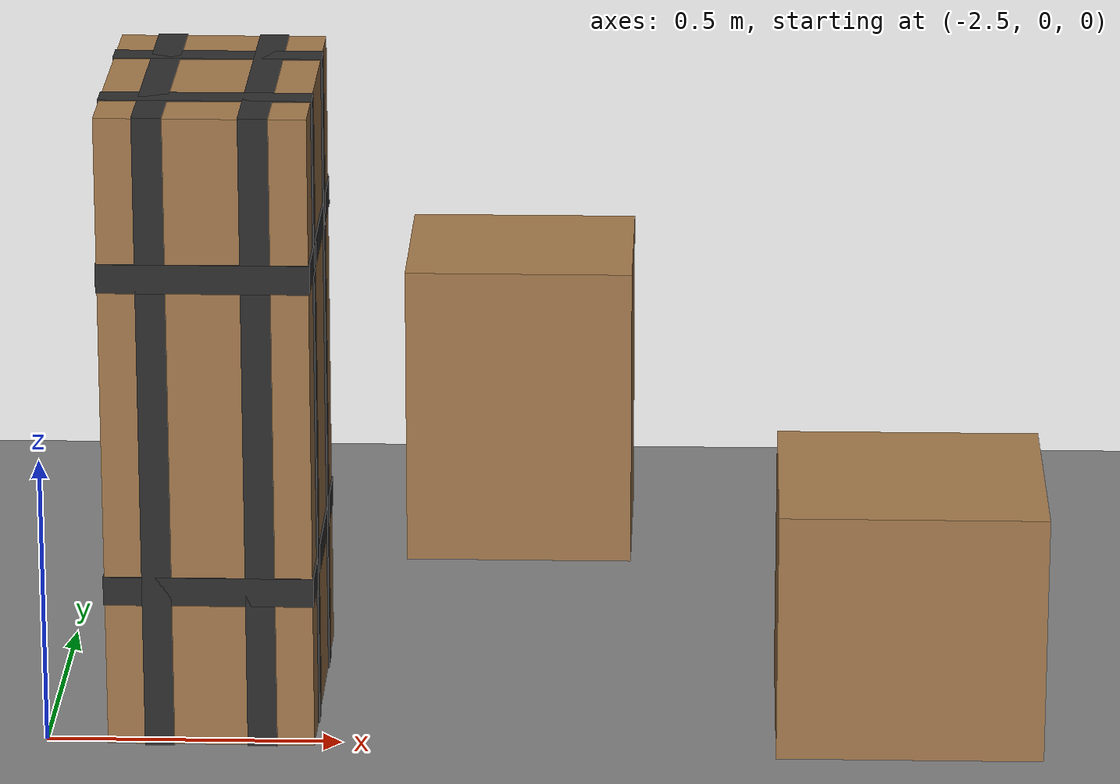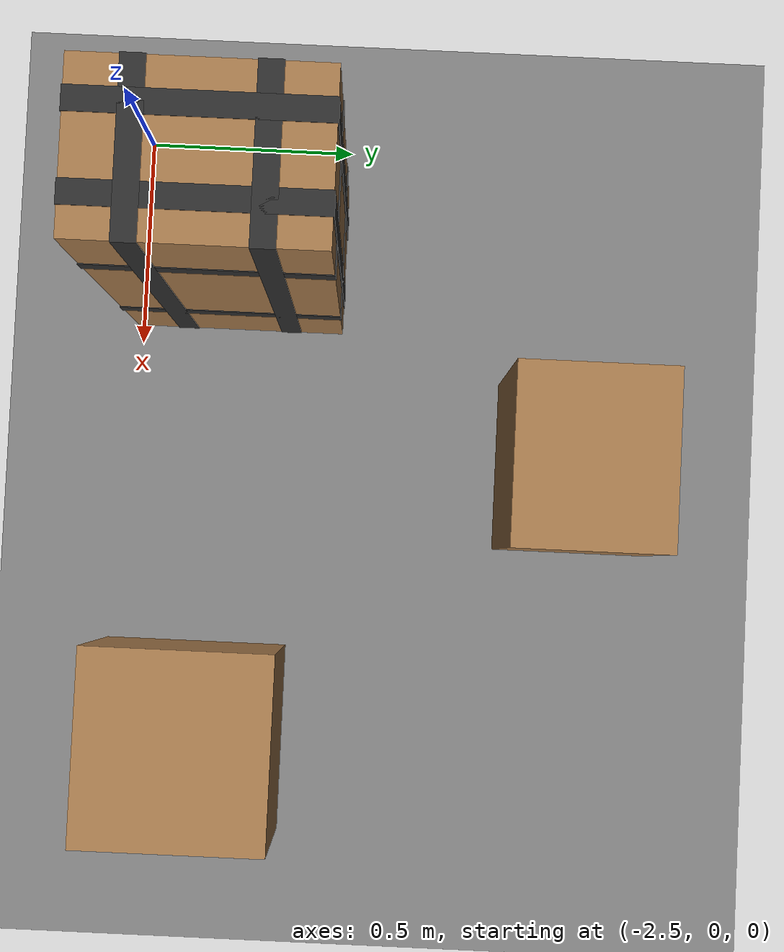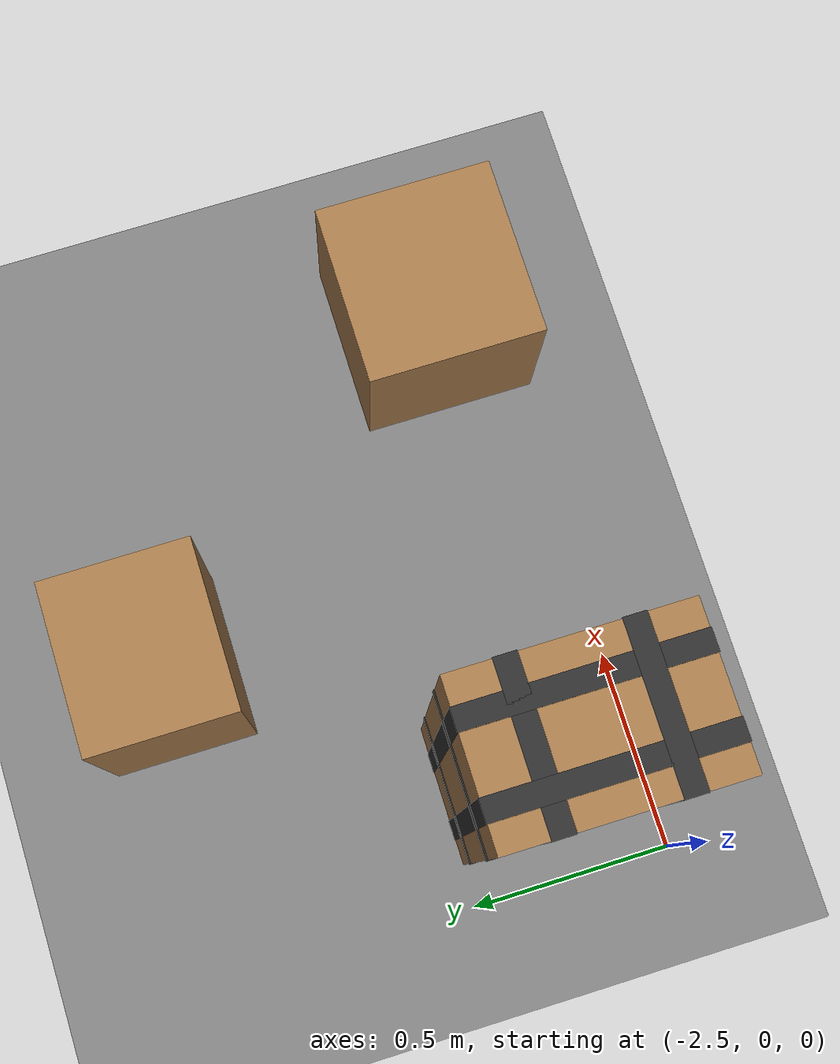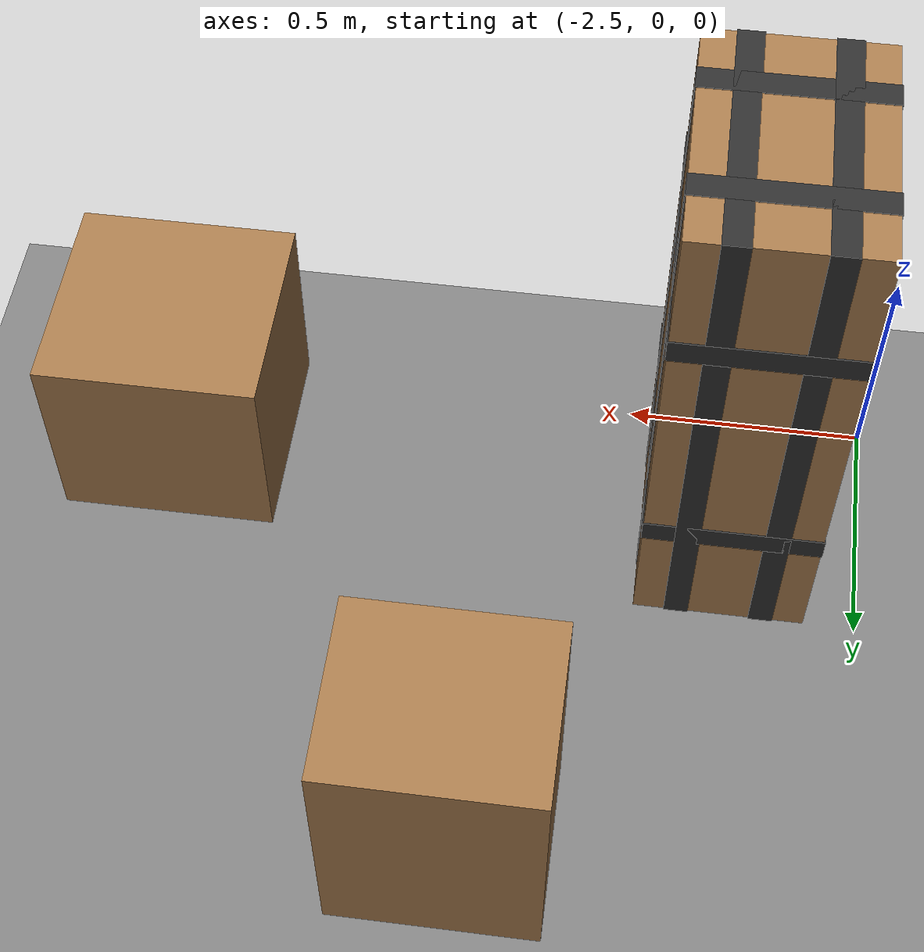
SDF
<sdf version="1.9">
 <world name="ecps295_lowbox_s0">
  <model name="ground_plane">
   <static>true</static>
   <link name="link">
    <collision name="collision">
     <geometry><plane><normal>0 0 1</normal><size>50 50</size></plane></geometry>
    </collision>
    <visual name="visual">
     <geometry><plane><normal>0 0 1</normal><size>50 50</size></plane></geometry>
     <material><ambient>0.5 0.5 0.5 1</ambient><diffuse>0.5 0.5 0.5 1</diffuse></material>
    </visual>
   </link>
  </model>
  <model name="lb1">
   <static>true</static>
   <pose>-1.04 0.17 0.214 0 0 0</pose>
   <link name="link">
    <collision name="c"><geometry><box><size>0.45 0.44 0.43</size></box></geometry></collision>
    <visual name="v">
     <geometry><box><size>0.45 0.44 0.43</size></box></geometry>
     <material><ambient>0.65 0.48 0.30 1</ambient><diffuse>0.65 0.48 0.30 1</diffuse></material>
    </visual>
   </link>
  </model>
  <model name="lb2">
   <static>true</static>
   <pose>-2.22 0.24 0.55 0 0 0</pose>
   <link name="link">
    <collision name="c"><geometry><box><size>0.35 0.51 1.1</size></box></geometry></collision>
    <visual name="v">
     <geometry><box><size>0.35 0.51 1.1</size></box></geometry>
     <material><ambient>0.65 0.48 0.30 1</ambient><diffuse>0.65 0.48 0.30 1</diffuse></material>
    </visual>
    <visual name="tape_ring0">
     <pose>0.000 0.000 -0.275 0 0 0</pose>
     <geometry><box><size>0.354 0.514 0.050</size></box></geometry>
     <material><ambient>0.18 0.18 0.18 1</ambient><diffuse>0.18 0.18 0.18 1</diffuse></material>
    </visual>
    <visual name="tape_bx0">
     <pose>-0.087 0.000 0.000 0 0 0</pose>
     <geometry><box><size>0.050 0.514 1.104</size></box></geometry>
     <material><ambient>0.18 0.18 0.18 1</ambient><diffuse>0.18 0.18 0.18 1</diffuse></material>
    </visual>
    <visual name="tape_by0">
     <pose>0.000 -0.128 0.000 0 0 0</pose>
     <geometry><box><size>0.354 0.050 1.104</size></box></geometry>
     <material><ambient>0.18 0.18 0.18 1</ambient><diffuse>0.18 0.18 0.18 1</diffuse></material>
    </visual>
    <visual name="tape_ring1">
     <pose>0.000 0.000 0.275 0 0 0</pose>
     <geometry><box><size>0.354 0.514 0.050</size></box></geometry>
     <material><ambient>0.18 0.18 0.18 1</ambient><diffuse>0.18 0.18 0.18 1</diffuse></material>
    </visual>
    <visual name="tape_bx1">
     <pose>0.087 0.000 0.000 0 0 0</pose>
     <geometry><box><size>0.050 0.514 1.104</size></box></geometry>
     <material><ambient>0.18 0.18 0.18 1</ambient><diffuse>0.18 0.18 0.18 1</diffuse></material>
    </visual>
    <visual name="tape_by1">
     <pose>0.000 0.128 0.000 0 0 0</pose>
     <geometry><box><size>0.354 0.050 1.104</size></box></geometry>
     <material><ambient>0.18 0.18 0.18 1</ambient><diffuse>0.18 0.18 0.18 1</diffuse></material>
    </visual>
   </link>
  </model>
  <model name="lb5">
   <static>true</static>
   <pose>-1.73 1.07 0.274 0 0 0</pose>
   <link name="link">
    <collision name="c"><geometry><box><size>0.41 0.36 0.55</size></box></geometry></collision>
    <visual name="v">
     <geometry><box><size>0.41 0.36 0.55</size></box></geometry>
     <material><ambient>0.65 0.48 0.30 1</ambient><diffuse>0.65 0.48 0.30 1</diffuse></material>
    </visual>
   </link>
  </model>
 </world>
</sdf>
